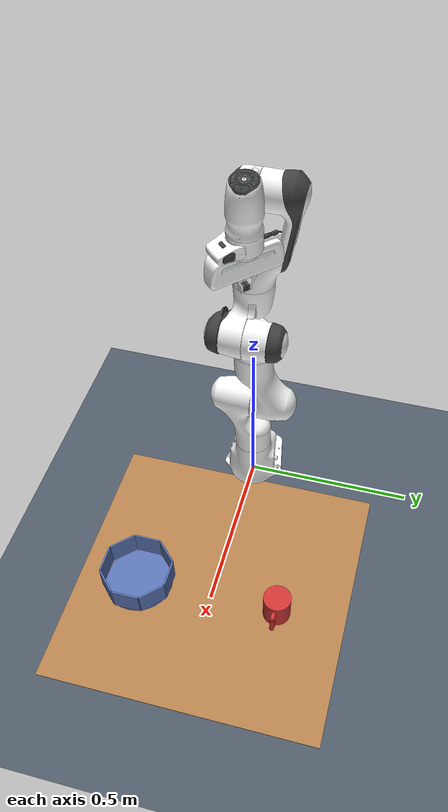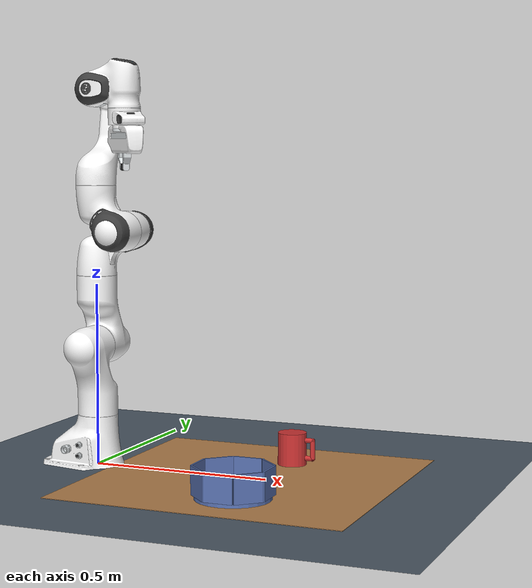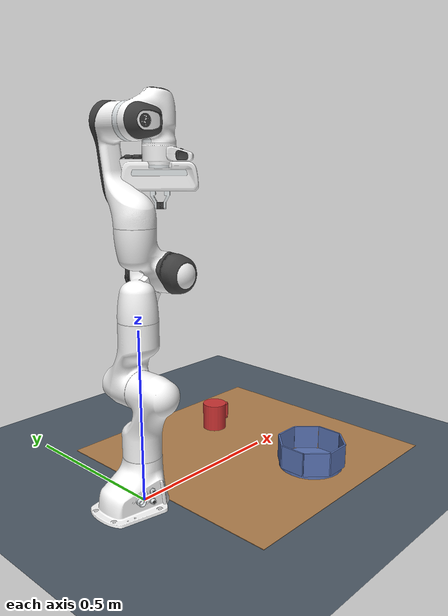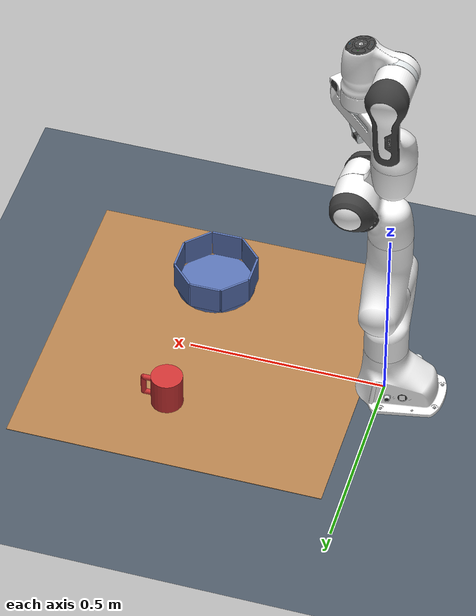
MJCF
<mujoco model="corl_mug_pour_realistic">

  <compiler angle="radian" autolimits="true"
            meshdir="../../../mujoco_menagerie/franka_emika_panda/assets"/>

  <include file="_panda_base.xml"/>

  <visual>
    <headlight diffuse="0.4 0.4 0.4" ambient="0.2 0.2 0.2" specular="0 0 0"/>
    <rgba haze="0.15 0.25 0.35 1"/>
    <global azimuth="120" elevation="-20" offwidth="800" offheight="600"/>
  </visual>

  <statistic center="0.4 0 0.5" extent="1.2"/>

  <asset>
    <texture type="skybox" builtin="gradient" rgb1="0.3 0.5 0.8"
             rgb2="0.1 0.2 0.4" width="512" height="3072"/>
    <texture type="2d" name="lab_floor" builtin="checker"
             rgb1="0.35 0.4 0.45" rgb2="0.25 0.3 0.35" width="512" height="512"
             mark="cross" markrgb="0.8 0.8 0.9"/>
    <material name="groundplane" texture="lab_floor" texrepeat="20 20"
              reflectance="0.3" shininess="0.1"/>

    <material name="table_mat" rgba="0.7 0.5 0.3 1" reflectance="0.4" shininess="0.3"/>
    <material name="mug_mat" rgba="0.8 0.2 0.2 1"
              specular="0.3" shininess="0.2" reflectance="0.1"/>
    <material name="bowl_mat" rgba="0.35 0.45 0.7 1"
              specular="0.6" shininess="0.4" reflectance="0.2"/>
  </asset>

  <worldbody>
    <light pos="0 0 4" dir="0 0 -1" directional="true" diffuse="0.5 0.5 0.5"/>
    <light pos="2 2 3" dir="-0.5 -0.5 -1" diffuse="0.25 0.25 0.25"/>
    <light pos="0 -2 3" dir="0 0.5 -1" diffuse="0.2 0.2 0.2"/>
    <geom name="floor" size="10 10 0.01" type="plane" material="groundplane"/>

    <!-- Table at z=0 in robot frame. -->
    <body name="table" pos="0.45 0 -0.01">
      <geom name="table_top" type="box" size="0.40 0.40 0.01"
            pos="0 0 0" material="table_mat"
            friction="1 0.5 0.0001"/>
    </body>

    <body name="mug" pos="0.50 0.20 0.0">
      <freejoint name="mug_free"/>

      <!-- Mug body: cylinder -->
      <geom name="mug_body" type="cylinder" size="0.040 0.045"
            pos="0 0 0.045" material="mug_mat"
            condim="6" friction="3 1.5 0.005"
            solimp="0.9 0.95 0.005" solref="0.02 1"/>

      <!-- Handle upper post: horizontal capsule, body wall to grip bar -->
      <geom name="mug_handle_upper" type="capsule" size="0.007"
            fromto="0.040 0 0.070  0.060 0 0.070" material="mug_mat"
            condim="6" friction="3 1.5 0.005"
            solimp="0.9 0.95 0.005" solref="0.02 1"/>

      <!-- Handle lower post: horizontal capsule, body wall to grip bar -->
      <geom name="mug_handle_lower" type="capsule" size="0.007"
            fromto="0.040 0 0.020  0.060 0 0.020" material="mug_mat"
            condim="6" friction="3 1.5 0.005"
            solimp="0.9 0.95 0.005" solref="0.02 1"/>

      <!-- Handle grip bar: vertical capsule on the outside -->
      <geom name="mug_handle_grip" type="capsule" size="0.007"
            fromto="0.060 0 0.020  0.060 0 0.070" material="mug_mat"
            condim="6" friction="3 1.5 0.005"
            solimp="0.9 0.95 0.005" solref="0.02 1"/>

      <!-- Handle grasp site at grip bar center -->
      <site name="mug_handle_site" pos="0.060 0 0.045" size="0.005"
            rgba="1 0.5 0 0.5" group="4"/>

      <!-- Mug mouth site at top rim -->
      <site name="mug_mouth" pos="0 0 0.090" size="0.035 0.035 0.001"
            rgba="0 0 0 0" type="box"/>

      <inertial pos="0 0 0.045" mass="0.20"
                diaginertia="0.00030 0.00030 0.00015"/>
    </body>

    <!--
      Bowl: 200mm OD, 80mm tall. At (0.50, -0.22).
    -->
    <body name="bowl" pos="0.50 -0.22 0.005">
      <geom name="bowl_bottom" type="cylinder" size="0.1 0.005"
            pos="0 0 0" material="bowl_mat"
            condim="6" friction="0.9 0.4 0.001"/>
      <!-- Octagonal wall -->
      <geom name="bowl_w0" type="box" size="0.039 0.0025 0.0375"
            pos="0.0975 0 0.0425" euler="0 0 1.5708" material="bowl_mat"/>
      <geom name="bowl_w1" type="box" size="0.039 0.0025 0.0375"
            pos="0.0689 0.0689 0.0425" euler="0 0 2.3562" material="bowl_mat"/>
      <geom name="bowl_w2" type="box" size="0.039 0.0025 0.0375"
            pos="0 0.0975 0.0425" euler="0 0 3.1416" material="bowl_mat"/>
      <geom name="bowl_w3" type="box" size="0.039 0.0025 0.0375"
            pos="-0.0689 0.0689 0.0425" euler="0 0 3.9270" material="bowl_mat"/>
      <geom name="bowl_w4" type="box" size="0.039 0.0025 0.0375"
            pos="-0.0975 0 0.0425" euler="0 0 1.5708" material="bowl_mat"/>
      <geom name="bowl_w5" type="box" size="0.039 0.0025 0.0375"
            pos="-0.0689 -0.0689 0.0425" euler="0 0 2.3562" material="bowl_mat"/>
      <geom name="bowl_w6" type="box" size="0.039 0.0025 0.0375"
            pos="0 -0.0975 0.0425" euler="0 0 3.1416" material="bowl_mat"/>
      <geom name="bowl_w7" type="box" size="0.039 0.0025 0.0375"
            pos="0.0689 -0.0689 0.0425" euler="0 0 3.9270" material="bowl_mat"/>
      <site name="bowl_target" pos="0 0 0.05" size="0.08 0.08 0.001"
            rgba="0 0 0 0" type="box"/>
    </body>

    <!-- Cameras -->
    <body name="cam_target" pos="0.45 0 0.05">
      <site name="cam_target_site" pos="0 0 0" size="0.001" rgba="0 0 0 0"/>
    </body>
    <body name="cam_agent_body" pos="1.4 0.0 0.8">
      <camera name="agentview" fovy="55" pos="0 0 0"
              mode="targetbody" target="cam_target"/>
    </body>
    <body name="cam_side_body" pos="0.45 -1.0 0.45">
      <camera name="sideview" fovy="55" pos="0 0 0"
              mode="targetbody" target="cam_target"/>
    </body>
    <body name="cam_top_body" pos="0.4 0 1.5">
      <camera name="topview" fovy="50" pos="0 0 0"
              mode="targetbody" target="cam_target"/>
    </body>
  </worldbody>

  <keyframe>
    <key name="home"
         qpos="0 -0.785 0 -2.356 0 1.571 0.785 0.04 0.04  0.50 0.20 0.045 1 0 0 0"
         ctrl="0 -0.785 0 -2.356 0 1.571 0.785 255"/>
  </keyframe>
</mujoco>

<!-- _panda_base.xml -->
<mujoco model="panda_base">

  <option integrator="implicitfast"/>

  <default>
    <default class="panda">
      <material specular="0.5" shininess="0.25"/>
      <joint armature="0.1" damping="1" axis="0 0 1" range="-2.8973 2.8973"/>
      <general dyntype="none" biastype="affine" ctrlrange="-2.8973 2.8973" forcerange="-87 87"/>
      <default class="finger">
        <joint axis="0 1 0" type="slide" range="0 0.04"/>
      </default>
      <default class="visual">
        <geom type="mesh" contype="0" conaffinity="0" group="2"/>
      </default>
      <default class="collision">
        <geom type="mesh" group="3"/>
        <default class="fingertip_pad_collision_1">
          <geom type="box" size="0.0085 0.004 0.0085" pos="0 0.0055 0.0445"
                friction="5 2 0.01" condim="6" solimp="0.95 0.99 0.005" solref="0.01 1"/>
        </default>
        <default class="fingertip_pad_collision_2">
          <geom type="box" size="0.003 0.002 0.003" pos="0.0055 0.002 0.05"
                friction="5 2 0.01" condim="6"/>
        </default>
        <default class="fingertip_pad_collision_3">
          <geom type="box" size="0.003 0.002 0.003" pos="-0.0055 0.002 0.05"
                friction="5 2 0.01" condim="6"/>
        </default>
        <default class="fingertip_pad_collision_4">
          <geom type="box" size="0.003 0.002 0.0035" pos="0.0055 0.002 0.0395"
                friction="5 2 0.01" condim="6"/>
        </default>
        <default class="fingertip_pad_collision_5">
          <geom type="box" size="0.003 0.002 0.0035" pos="-0.0055 0.002 0.0395"
                friction="5 2 0.01" condim="6"/>
        </default>
      </default>
    </default>
  </default>

  <asset>
    <material class="panda" name="panda_white" rgba="1 1 1 1"/>
    <material class="panda" name="panda_off_white" rgba="0.901961 0.921569 0.929412 1"/>
    <material class="panda" name="panda_black" rgba="0.25 0.25 0.25 1"/>
    <material class="panda" name="panda_green" rgba="0 1 0 1"/>
    <material class="panda" name="panda_light_blue" rgba="0.039216 0.541176 0.780392 1"/>

    <mesh name="link0_c" file="link0.stl"/>
    <mesh name="link1_c" file="link1.stl"/>
    <mesh name="link2_c" file="link2.stl"/>
    <mesh name="link3_c" file="link3.stl"/>
    <mesh name="link4_c" file="link4.stl"/>
    <mesh name="link5_c0" file="link5_collision_0.obj"/>
    <mesh name="link5_c1" file="link5_collision_1.obj"/>
    <mesh name="link5_c2" file="link5_collision_2.obj"/>
    <mesh name="link6_c" file="link6.stl"/>
    <mesh name="link7_c" file="link7.stl"/>
    <mesh name="hand_c" file="hand.stl"/>

    <mesh file="link0_0.obj"/>
    <mesh file="link0_1.obj"/>
    <mesh file="link0_2.obj"/>
    <mesh file="link0_3.obj"/>
    <mesh file="link0_4.obj"/>
    <mesh file="link0_5.obj"/>
    <mesh file="link0_7.obj"/>
    <mesh file="link0_8.obj"/>
    <mesh file="link0_9.obj"/>
    <mesh file="link0_10.obj"/>
    <mesh file="link0_11.obj"/>
    <mesh file="link1.obj"/>
    <mesh file="link2.obj"/>
    <mesh file="link3_0.obj"/>
    <mesh file="link3_1.obj"/>
    <mesh file="link3_2.obj"/>
    <mesh file="link3_3.obj"/>
    <mesh file="link4_0.obj"/>
    <mesh file="link4_1.obj"/>
    <mesh file="link4_2.obj"/>
    <mesh file="link4_3.obj"/>
    <mesh file="link5_0.obj"/>
    <mesh file="link5_1.obj"/>
    <mesh file="link5_2.obj"/>
    <mesh file="link6_0.obj"/>
    <mesh file="link6_1.obj"/>
    <mesh file="link6_2.obj"/>
    <mesh file="link6_3.obj"/>
    <mesh file="link6_4.obj"/>
    <mesh file="link6_5.obj"/>
    <mesh file="link6_6.obj"/>
    <mesh file="link6_7.obj"/>
    <mesh file="link6_8.obj"/>
    <mesh file="link6_9.obj"/>
    <mesh file="link6_10.obj"/>
    <mesh file="link6_11.obj"/>
    <mesh file="link6_12.obj"/>
    <mesh file="link6_13.obj"/>
    <mesh file="link6_14.obj"/>
    <mesh file="link6_15.obj"/>
    <mesh file="link6_16.obj"/>
    <mesh file="link7_0.obj"/>
    <mesh file="link7_1.obj"/>
    <mesh file="link7_2.obj"/>
    <mesh file="link7_3.obj"/>
    <mesh file="link7_4.obj"/>
    <mesh file="link7_5.obj"/>
    <mesh file="link7_6.obj"/>
    <mesh file="link7_7.obj"/>
    <mesh file="hand_0.obj"/>
    <mesh file="hand_1.obj"/>
    <mesh file="hand_2.obj"/>
    <mesh file="hand_3.obj"/>
    <mesh file="hand_4.obj"/>
    <mesh file="finger_0.obj"/>
    <mesh file="finger_1.obj"/>
  </asset>

  <worldbody>
    <body name="link0" childclass="panda">
      <inertial mass="0.629769" pos="-0.041018 -0.00014 0.049974"
        fullinertia="0.00315 0.00388 0.004285 8.2904e-7 0.00015 8.2299e-6"/>
      <geom mesh="link0_0" material="panda_off_white" class="visual"/>
      <geom mesh="link0_1" material="panda_black" class="visual"/>
      <geom mesh="link0_2" material="panda_off_white" class="visual"/>
      <geom mesh="link0_3" material="panda_black" class="visual"/>
      <geom mesh="link0_4" material="panda_off_white" class="visual"/>
      <geom mesh="link0_5" material="panda_black" class="visual"/>
      <geom mesh="link0_7" material="panda_white" class="visual"/>
      <geom mesh="link0_8" material="panda_white" class="visual"/>
      <geom mesh="link0_9" material="panda_black" class="visual"/>
      <geom mesh="link0_10" material="panda_off_white" class="visual"/>
      <geom mesh="link0_11" material="panda_white" class="visual"/>
      <geom mesh="link0_c" class="collision"/>
      <body name="link1" pos="0 0 0.333">
        <inertial mass="4.970684" pos="0.003875 0.002081 -0.04762"
          fullinertia="0.70337 0.70661 0.0091170 -0.00013900 0.0067720 0.019169"/>
        <joint name="joint1"/>
        <geom material="panda_white" mesh="link1" class="visual"/>
        <geom mesh="link1_c" class="collision"/>
        <body name="link2" quat="1 -1 0 0">
          <inertial mass="0.646926" pos="-0.003141 -0.02872 0.003495"
            fullinertia="0.0079620 2.8110e-2 2.5995e-2 -3.925e-3 1.0254e-2 7.04e-4"/>
          <joint name="joint2" range="-1.7628 1.7628"/>
          <geom material="panda_white" mesh="link2" class="visual"/>
          <geom mesh="link2_c" class="collision"/>
          <body name="link3" pos="0 -0.316 0" quat="1 1 0 0">
            <joint name="joint3"/>
            <inertial mass="3.228604" pos="2.7518e-2 3.9252e-2 -6.6502e-2"
              fullinertia="3.7242e-2 3.6155e-2 1.083e-2 -4.761e-3 -1.1396e-2 -1.2805e-2"/>
            <geom mesh="link3_0" material="panda_white" class="visual"/>
            <geom mesh="link3_1" material="panda_white" class="visual"/>
            <geom mesh="link3_2" material="panda_white" class="visual"/>
            <geom mesh="link3_3" material="panda_black" class="visual"/>
            <geom mesh="link3_c" class="collision"/>
            <body name="link4" pos="0.0825 0 0" quat="1 1 0 0">
              <inertial mass="3.587895" pos="-5.317e-2 1.04419e-1 2.7454e-2"
                fullinertia="2.5853e-2 1.9552e-2 2.8323e-2 7.796e-3 -1.332e-3 8.641e-3"/>
              <joint name="joint4" range="-3.0718 -0.0698"/>
              <geom mesh="link4_0" material="panda_white" class="visual"/>
              <geom mesh="link4_1" material="panda_white" class="visual"/>
              <geom mesh="link4_2" material="panda_black" class="visual"/>
              <geom mesh="link4_3" material="panda_white" class="visual"/>
              <geom mesh="link4_c" class="collision"/>
              <body name="link5" pos="-0.0825 0.384 0" quat="1 -1 0 0">
                <inertial mass="1.225946" pos="-1.1953e-2 4.1065e-2 -3.8437e-2"
                  fullinertia="3.5549e-2 2.9474e-2 8.627e-3 -2.117e-3 -4.037e-3 2.29e-4"/>
                <joint name="joint5"/>
                <geom mesh="link5_0" material="panda_black" class="visual"/>
                <geom mesh="link5_1" material="panda_white" class="visual"/>
                <geom mesh="link5_2" material="panda_white" class="visual"/>
                <geom mesh="link5_c0" class="collision"/>
                <geom mesh="link5_c1" class="collision"/>
                <geom mesh="link5_c2" class="collision"/>
                <body name="link6" quat="1 1 0 0">
                  <inertial mass="1.666555" pos="6.0149e-2 -1.4117e-2 -1.0517e-2"
                    fullinertia="1.964e-3 4.354e-3 5.433e-3 1.09e-4 -1.158e-3 3.41e-4"/>
                  <joint name="joint6" range="-0.0175 3.7525"/>
                  <geom mesh="link6_0" material="panda_off_white" class="visual"/>
                  <geom mesh="link6_1" material="panda_white" class="visual"/>
                  <geom mesh="link6_2" material="panda_black" class="visual"/>
                  <geom mesh="link6_3" material="panda_white" class="visual"/>
                  <geom mesh="link6_4" material="panda_white" class="visual"/>
                  <geom mesh="link6_5" material="panda_white" class="visual"/>
                  <geom mesh="link6_6" material="panda_white" class="visual"/>
                  <geom mesh="link6_7" material="panda_light_blue" class="visual"/>
                  <geom mesh="link6_8" material="panda_light_blue" class="visual"/>
                  <geom mesh="link6_9" material="panda_black" class="visual"/>
                  <geom mesh="link6_10" material="panda_black" class="visual"/>
                  <geom mesh="link6_11" material="panda_white" class="visual"/>
                  <geom mesh="link6_12" material="panda_green" class="visual"/>
                  <geom mesh="link6_13" material="panda_white" class="visual"/>
                  <geom mesh="link6_14" material="panda_black" class="visual"/>
                  <geom mesh="link6_15" material="panda_black" class="visual"/>
                  <geom mesh="link6_16" material="panda_white" class="visual"/>
                  <geom mesh="link6_c" class="collision"/>
                  <body name="link7" pos="0.088 0 0" quat="1 1 0 0">
                    <inertial mass="7.35522e-01" pos="1.0517e-2 -4.252e-3 6.1597e-2"
                      fullinertia="1.2516e-2 1.0027e-2 4.815e-3 -4.28e-4 -1.196e-3 -7.41e-4"/>
                    <joint name="joint7"/>
                    <geom mesh="link7_0" material="panda_white" class="visual"/>
                    <geom mesh="link7_1" material="panda_black" class="visual"/>
                    <geom mesh="link7_2" material="panda_black" class="visual"/>
                    <geom mesh="link7_3" material="panda_black" class="visual"/>
                    <geom mesh="link7_4" material="panda_black" class="visual"/>
                    <geom mesh="link7_5" material="panda_black" class="visual"/>
                    <geom mesh="link7_6" material="panda_black" class="visual"/>
                    <geom mesh="link7_7" material="panda_white" class="visual"/>
                    <geom mesh="link7_c" class="collision"/>
                    <body name="hand" pos="0 0 0.107" quat="0.9238795 0 0 -0.3826834">
                      <inertial mass="0.73" pos="-0.01 0 0.03" diaginertia="0.001 0.0025 0.0017"/>
                      <site name="pinch" pos="0 0 0.1034" size="0.005"
                            rgba="1 0 0 0.5" group="4"/>
                      <geom mesh="hand_0" material="panda_off_white" class="visual"/>
                      <geom mesh="hand_1" material="panda_black" class="visual"/>
                      <geom mesh="hand_2" material="panda_black" class="visual"/>
                      <geom mesh="hand_3" material="panda_white" class="visual"/>
                      <geom mesh="hand_4" material="panda_off_white" class="visual"/>
                      <geom mesh="hand_c" class="collision"/>
                      <body name="left_finger" pos="0 0 0.0584">
                        <inertial mass="0.015" pos="0 0 0" diaginertia="2.375e-6 2.375e-6 7.5e-7"/>
                        <joint name="finger_joint1" class="finger"/>
                        <geom mesh="finger_0" material="panda_off_white" class="visual"/>
                        <geom mesh="finger_1" material="panda_black" class="visual"/>
                        <geom mesh="finger_0" class="collision"/>
                        <geom class="fingertip_pad_collision_1"/>
                        <geom class="fingertip_pad_collision_2"/>
                        <geom class="fingertip_pad_collision_3"/>
                        <geom class="fingertip_pad_collision_4"/>
                        <geom class="fingertip_pad_collision_5"/>
                      </body>
                      <body name="right_finger" pos="0 0 0.0584" quat="0 0 0 1">
                        <inertial mass="0.015" pos="0 0 0" diaginertia="2.375e-6 2.375e-6 7.5e-7"/>
                        <joint name="finger_joint2" class="finger"/>
                        <geom mesh="finger_0" material="panda_off_white" class="visual"/>
                        <geom mesh="finger_1" material="panda_black" class="visual"/>
                        <geom mesh="finger_0" class="collision"/>
                        <geom class="fingertip_pad_collision_1"/>
                        <geom class="fingertip_pad_collision_2"/>
                        <geom class="fingertip_pad_collision_3"/>
                        <geom class="fingertip_pad_collision_4"/>
                        <geom class="fingertip_pad_collision_5"/>
                      </body>
                    </body>
                  </body>
                </body>
              </body>
            </body>
          </body>
        </body>
      </body>
    </body>
  </worldbody>

  <tendon>
    <fixed name="split">
      <joint joint="finger_joint1" coef="0.5"/>
      <joint joint="finger_joint2" coef="0.5"/>
    </fixed>
  </tendon>

  <equality>
    <joint joint1="finger_joint1" joint2="finger_joint2" solimp="0.95 0.99 0.001" solref="0.005 1"/>
  </equality>

  <actuator>
    <general class="panda" name="actuator1" joint="joint1" gainprm="4500" biasprm="0 -4500 -450"/>
    <general class="panda" name="actuator2" joint="joint2" gainprm="4500" biasprm="0 -4500 -450"
      ctrlrange="-1.7628 1.7628"/>
    <general class="panda" name="actuator3" joint="joint3" gainprm="3500" biasprm="0 -3500 -350"/>
    <general class="panda" name="actuator4" joint="joint4" gainprm="3500" biasprm="0 -3500 -350"
      ctrlrange="-3.0718 -0.0698"/>
    <general class="panda" name="actuator5" joint="joint5" gainprm="2000" biasprm="0 -2000 -200" forcerange="-12 12"/>
    <general class="panda" name="actuator6" joint="joint6" gainprm="2000" biasprm="0 -2000 -200" forcerange="-12 12"
      ctrlrange="-0.0175 3.7525"/>
    <general class="panda" name="actuator7" joint="joint7" gainprm="2000" biasprm="0 -2000 -200" forcerange="-12 12"/>
    <general class="panda" name="actuator8" tendon="split" forcerange="-2000 2000" ctrlrange="0 255"
      gainprm="0.3137254902 0 0" biasprm="0 -2000 -200"/>
  </actuator>

  <contact>
    <exclude body1="link0" body2="link1"/>
  </contact>
</mujoco>
